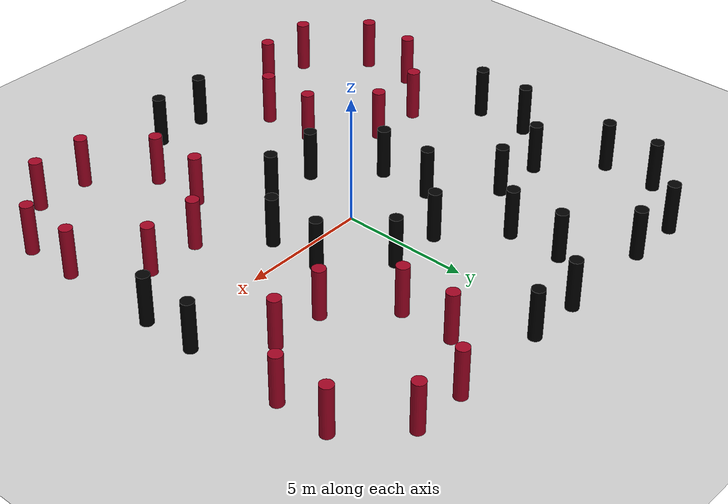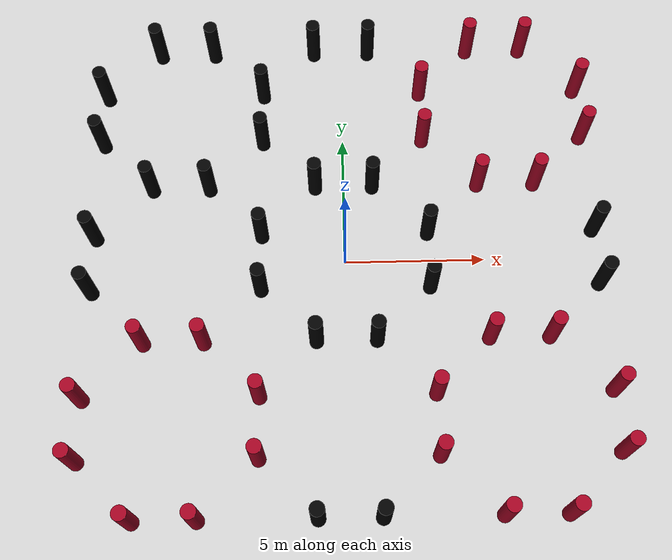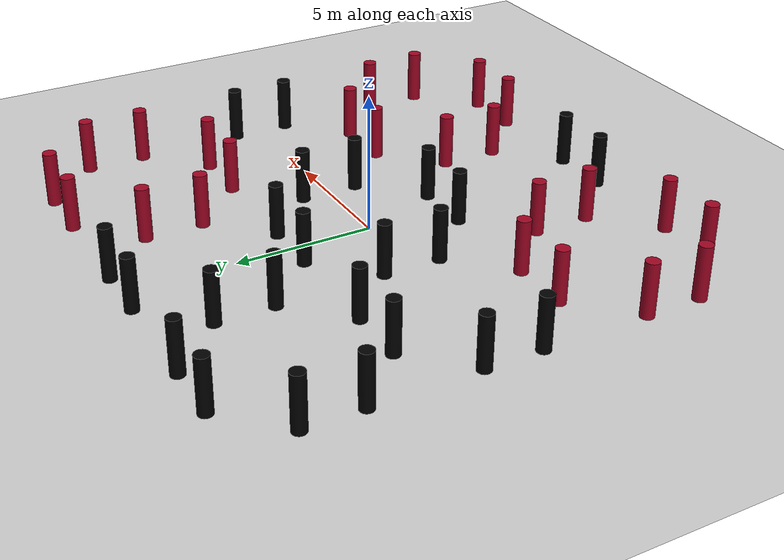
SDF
<sdf version="1.6">
 <world name="ros_logo">
  <include><uri>model://ground_plane</uri></include>
  <include><uri>model://sun</uri></include>
  <model name="wall_D_3_1">
   <static>true</static>
   <pose>3 1.05 1 0 0 0</pose>
   <link name="link">
    <collision name="wall">
     <geometry><cylinder><radius>0.25</radius><length>2.0</length></cylinder></geometry>
    </collision>
    <visual name="vis">
     <geometry><cylinder><radius>0.25</radius><length>2.0</length></cylinder></geometry>
     <material><ambient>0.0 0.0 0.0 1</ambient><diffuse>0.0 0.0 0.0 1</diffuse></material>
    </visual>
   </link>
  </model>
  <model name="wall_I_3_5">
   <static>true</static>
   <pose>3 4.95 1 0 0 0</pose>
   <link name="link">
    <collision name="wall">
     <laser_retro>255</laser_retro>
     <geometry><cylinder><radius>0.25</radius><length>2.0</length></cylinder></geometry>
    </collision>
    <visual name="vis">
     <geometry><cylinder><radius>0.25</radius><length>2.0</length></cylinder></geometry>
     <material><ambient>0.627 0.012 0.133 1</ambient><diffuse>0.627 0.012 0.133 1</diffuse></material>
    </visual>
   </link>
  </model>
  <model name="wall_A_5_3">
   <static>true</static>
   <pose>4.95 3 1 0 0 0</pose>
   <link name="link">
    <collision name="wall">
     <laser_retro>255</laser_retro>
     <geometry><cylinder><radius>0.25</radius><length>2.0</length></cylinder></geometry>
    </collision>
    <visual name="vis">
     <geometry><cylinder><radius>0.25</radius><length>2.0</length></cylinder></geometry>
     <material><ambient>0.627 0.012 0.133 1</ambient><diffuse>0.627 0.012 0.133 1</diffuse></material>
    </visual>
   </link>
  </model>
  <model name="wall_B_1_3">
   <static>true</static>
   <pose>1.05 3 1 0 0 0</pose>
   <link name="link">
    <collision name="wall">
     <geometry><cylinder><radius>0.25</radius><length>2.0</length></cylinder></geometry>
    </collision>
    <visual name="vis">
     <geometry><cylinder><radius>0.25</radius><length>2.0</length></cylinder></geometry>
     <material><ambient>0.0 0.0 0.0 1</ambient><diffuse>0.0 0.0 0.0 1</diffuse></material>
    </visual>
   </link>
  </model>
  <model name="wall_D_3_-5">
   <static>true</static>
   <pose>3 -4.95 1 0 0 0</pose>
   <link name="link">
    <collision name="wall">
     <laser_retro>255</laser_retro>
     <geometry><cylinder><radius>0.25</radius><length>2.0</length></cylinder></geometry>
    </collision>
    <visual name="vis">
     <geometry><cylinder><radius>0.25</radius><length>2.0</length></cylinder></geometry>
     <material><ambient>0.627 0.012 0.133 1</ambient><diffuse>0.627 0.012 0.133 1</diffuse></material>
    </visual>
   </link>
  </model>
  <model name="wall_I_3_-1">
   <static>true</static>
   <pose>3 -1.05 1 0 0 0</pose>
   <link name="link">
    <collision name="wall">
     <geometry><cylinder><radius>0.25</radius><length>2.0</length></cylinder></geometry>
    </collision>
    <visual name="vis">
     <geometry><cylinder><radius>0.25</radius><length>2.0</length></cylinder></geometry>
     <material><ambient>0.0 0.0 0.0 1</ambient><diffuse>0.0 0.0 0.0 1</diffuse></material>
    </visual>
   </link>
  </model>
  <model name="wall_A_5_-3">
   <static>true</static>
   <pose>4.95 -3 1 0 0 0</pose>
   <link name="link">
    <collision name="wall">
     <laser_retro>255</laser_retro>
     <geometry><cylinder><radius>0.25</radius><length>2.0</length></cylinder></geometry>
    </collision>
    <visual name="vis">
     <geometry><cylinder><radius>0.25</radius><length>2.0</length></cylinder></geometry>
     <material><ambient>0.627 0.012 0.133 1</ambient><diffuse>0.627 0.012 0.133 1</diffuse></material>
    </visual>
   </link>
  </model>
  <model name="wall_B_1_-3">
   <static>true</static>
   <pose>1.05 -3 1 0 0 0</pose>
   <link name="link">
    <collision name="wall">
     <geometry><cylinder><radius>0.25</radius><length>2.0</length></cylinder></geometry>
    </collision>
    <visual name="vis">
     <geometry><cylinder><radius>0.25</radius><length>2.0</length></cylinder></geometry>
     <material><ambient>0.0 0.0 0.0 1</ambient><diffuse>0.0 0.0 0.0 1</diffuse></material>
    </visual>
   </link>
  </model>
  <model name="wall_D_-3_-5">
   <static>true</static>
   <pose>-3 -4.95 1 0 0 0</pose>
   <link name="link">
    <collision name="wall">
     <laser_retro>255</laser_retro>
     <geometry><cylinder><radius>0.25</radius><length>2.0</length></cylinder></geometry>
    </collision>
    <visual name="vis">
     <geometry><cylinder><radius>0.25</radius><length>2.0</length></cylinder></geometry>
     <material><ambient>0.627 0.012 0.133 1</ambient><diffuse>0.627 0.012 0.133 1</diffuse></material>
    </visual>
   </link>
  </model>
  <model name="wall_I_-3_-1">
   <static>true</static>
   <pose>-3 -1.05 1 0 0 0</pose>
   <link name="link">
    <collision name="wall">
     <geometry><cylinder><radius>0.25</radius><length>2.0</length></cylinder></geometry>
    </collision>
    <visual name="vis">
     <geometry><cylinder><radius>0.25</radius><length>2.0</length></cylinder></geometry>
     <material><ambient>0.0 0.0 0.0 1</ambient><diffuse>0.0 0.0 0.0 1</diffuse></material>
    </visual>
   </link>
  </model>
  <model name="wall_A_-5_-3">
   <static>true</static>
   <pose>-4.95 -3 1 0 0 0</pose>
   <link name="link">
    <collision name="wall">
     <laser_retro>255</laser_retro>
     <geometry><cylinder><radius>0.25</radius><length>2.0</length></cylinder></geometry>
    </collision>
    <visual name="vis">
     <geometry><cylinder><radius>0.25</radius><length>2.0</length></cylinder></geometry>
     <material><ambient>0.627 0.012 0.133 1</ambient><diffuse>0.627 0.012 0.133 1</diffuse></material>
    </visual>
   </link>
  </model>
  <model name="wall_B_-1_-3">
   <static>true</static>
   <pose>-1.05 -3 1 0 0 0</pose>
   <link name="link">
    <collision name="wall">
     <geometry><cylinder><radius>0.25</radius><length>2.0</length></cylinder></geometry>
    </collision>
    <visual name="vis">
     <geometry><cylinder><radius>0.25</radius><length>2.0</length></cylinder></geometry>
     <material><ambient>0.0 0.0 0.0 1</ambient><diffuse>0.0 0.0 0.0 1</diffuse></material>
    </visual>
   </link>
  </model>
  <model name="wall_D_-3_5">
   <static>true</static>
   <pose>-3 4.95 1 0 0 0</pose>
   <link name="link">
    <collision name="wall">
     <geometry><cylinder><radius>0.25</radius><length>2.0</length></cylinder></geometry>
    </collision>
    <visual name="vis">
     <geometry><cylinder><radius>0.25</radius><length>2.0</length></cylinder></geometry>
     <material><ambient>0.0 0.0 0.0 1</ambient><diffuse>0.0 0.0 0.0 1</diffuse></material>
    </visual>
   </link>
  </model>
  <model name="wall_I_-3_1">
   <static>true</static>
   <pose>-3 1.05 1 0 0 0</pose>
   <link name="link">
    <collision name="wall">
     <geometry><cylinder><radius>0.25</radius><length>2.0</length></cylinder></geometry>
    </collision>
    <visual name="vis">
     <geometry><cylinder><radius>0.25</radius><length>2.0</length></cylinder></geometry>
     <material><ambient>0.0 0.0 0.0 1</ambient><diffuse>0.0 0.0 0.0 1</diffuse></material>
    </visual>
   </link>
  </model>
  <model name="wall_A_-5_3">
   <static>true</static>
   <pose>-4.95 3 1 0 0 0</pose>
   <link name="link">
    <collision name="wall">
     <geometry><cylinder><radius>0.25</radius><length>2.0</length></cylinder></geometry>
    </collision>
    <visual name="vis">
     <geometry><cylinder><radius>0.25</radius><length>2.0</length></cylinder></geometry>
     <material><ambient>0.0 0.0 0.0 1</ambient><diffuse>0.0 0.0 0.0 1</diffuse></material>
    </visual>
   </link>
  </model>
  <model name="wall_B_-1_3">
   <static>true</static>
   <pose>-1.05 3 1 0 0 0</pose>
   <link name="link">
    <collision name="wall">
     <geometry><cylinder><radius>0.25</radius><length>2.0</length></cylinder></geometry>
    </collision>
    <visual name="vis">
     <geometry><cylinder><radius>0.25</radius><length>2.0</length></cylinder></geometry>
     <material><ambient>0.0 0.0 0.0 1</ambient><diffuse>0.0 0.0 0.0 1</diffuse></material>
    </visual>
   </link>
  </model>
  <model name="wall_D_-3_7">
   <static>true</static>
   <pose>-3 7.05 1 0 0 0</pose>
   <link name="link">
    <collision name="wall">
     <geometry><cylinder><radius>0.25</radius><length>2.0</length></cylinder></geometry>
    </collision>
    <visual name="vis">
     <geometry><cylinder><radius>0.25</radius><length>2.0</length></cylinder></geometry>
     <material><ambient>0.0 0.0 0.0 1</ambient><diffuse>0.0 0.0 0.0 1</diffuse></material>
    </visual>
   </link>
  </model>
  <model name="wall_A_-5_9">
   <static>true</static>
   <pose>-4.95 9 1 0 0 0</pose>
   <link name="link">
    <collision name="wall">
     <geometry><cylinder><radius>0.25</radius><length>2.0</length></cylinder></geometry>
    </collision>
    <visual name="vis">
     <geometry><cylinder><radius>0.25</radius><length>2.0</length></cylinder></geometry>
     <material><ambient>0.0 0.0 0.0 1</ambient><diffuse>0.0 0.0 0.0 1</diffuse></material>
    </visual>
   </link>
  </model>
  <model name="wall_B_-1_9">
   <static>true</static>
   <pose>-1.05 9 1 0 0 0</pose>
   <link name="link">
    <collision name="wall">
     <geometry><cylinder><radius>0.25</radius><length>2.0</length></cylinder></geometry>
    </collision>
    <visual name="vis">
     <geometry><cylinder><radius>0.25</radius><length>2.0</length></cylinder></geometry>
     <material><ambient>0.0 0.0 0.0 1</ambient><diffuse>0.0 0.0 0.0 1</diffuse></material>
    </visual>
   </link>
  </model>
  <model name="wall_D_3_7">
   <static>true</static>
   <pose>3 7.05 1 0 0 0</pose>
   <link name="link">
    <collision name="wall">
     <laser_retro>255</laser_retro>
     <geometry><cylinder><radius>0.25</radius><length>2.0</length></cylinder></geometry>
    </collision>
    <visual name="vis">
     <geometry><cylinder><radius>0.25</radius><length>2.0</length></cylinder></geometry>
     <material><ambient>0.627 0.012 0.133 1</ambient><diffuse>0.627 0.012 0.133 1</diffuse></material>
    </visual>
   </link>
  </model>
  <model name="wall_A_5_9">
   <static>true</static>
   <pose>4.95 9 1 0 0 0</pose>
   <link name="link">
    <collision name="wall">
     <laser_retro>255</laser_retro>
     <geometry><cylinder><radius>0.25</radius><length>2.0</length></cylinder></geometry>
    </collision>
    <visual name="vis">
     <geometry><cylinder><radius>0.25</radius><length>2.0</length></cylinder></geometry>
     <material><ambient>0.627 0.012 0.133 1</ambient><diffuse>0.627 0.012 0.133 1</diffuse></material>
    </visual>
   </link>
  </model>
  <model name="wall_B_1_9">
   <static>true</static>
   <pose>1.05 9 1 0 0 0</pose>
   <link name="link">
    <collision name="wall">
     <geometry><cylinder><radius>0.25</radius><length>2.0</length></cylinder></geometry>
    </collision>
    <visual name="vis">
     <geometry><cylinder><radius>0.25</radius><length>2.0</length></cylinder></geometry>
     <material><ambient>0.0 0.0 0.0 1</ambient><diffuse>0.0 0.0 0.0 1</diffuse></material>
    </visual>
   </link>
  </model>
  <model name="wall_D_9_7">
   <static>true</static>
   <pose>9 7.05 1 0 0 0</pose>
   <link name="link">
    <collision name="wall">
     <laser_retro>255</laser_retro>
     <geometry><cylinder><radius>0.25</radius><length>2.0</length></cylinder></geometry>
    </collision>
    <visual name="vis">
     <geometry><cylinder><radius>0.25</radius><length>2.0</length></cylinder></geometry>
     <material><ambient>0.627 0.012 0.133 1</ambient><diffuse>0.627 0.012 0.133 1</diffuse></material>
    </visual>
   </link>
  </model>
  <model name="wall_B_7_9">
   <static>true</static>
   <pose>7.05 9 1 0 0 0</pose>
   <link name="link">
    <collision name="wall">
     <laser_retro>255</laser_retro>
     <geometry><cylinder><radius>0.25</radius><length>2.0</length></cylinder></geometry>
    </collision>
    <visual name="vis">
     <geometry><cylinder><radius>0.25</radius><length>2.0</length></cylinder></geometry>
     <material><ambient>0.627 0.012 0.133 1</ambient><diffuse>0.627 0.012 0.133 1</diffuse></material>
    </visual>
   </link>
  </model>
  <model name="wall_D_9_1">
   <static>true</static>
   <pose>9 1.05 1 0 0 0</pose>
   <link name="link">
    <collision name="wall">
     <geometry><cylinder><radius>0.25</radius><length>2.0</length></cylinder></geometry>
    </collision>
    <visual name="vis">
     <geometry><cylinder><radius>0.25</radius><length>2.0</length></cylinder></geometry>
     <material><ambient>0.0 0.0 0.0 1</ambient><diffuse>0.0 0.0 0.0 1</diffuse></material>
    </visual>
   </link>
  </model>
  <model name="wall_I_9_5">
   <static>true</static>
   <pose>9 4.95 1 0 0 0</pose>
   <link name="link">
    <collision name="wall">
     <laser_retro>255</laser_retro>
     <geometry><cylinder><radius>0.25</radius><length>2.0</length></cylinder></geometry>
    </collision>
    <visual name="vis">
     <geometry><cylinder><radius>0.25</radius><length>2.0</length></cylinder></geometry>
     <material><ambient>0.627 0.012 0.133 1</ambient><diffuse>0.627 0.012 0.133 1</diffuse></material>
    </visual>
   </link>
  </model>
  <model name="wall_B_7_3">
   <static>true</static>
   <pose>7.05 3 1 0 0 0</pose>
   <link name="link">
    <collision name="wall">
     <laser_retro>255</laser_retro>
     <geometry><cylinder><radius>0.25</radius><length>2.0</length></cylinder></geometry>
    </collision>
    <visual name="vis">
     <geometry><cylinder><radius>0.25</radius><length>2.0</length></cylinder></geometry>
     <material><ambient>0.627 0.012 0.133 1</ambient><diffuse>0.627 0.012 0.133 1</diffuse></material>
    </visual>
   </link>
  </model>
  <model name="wall_D_9_-5">
   <static>true</static>
   <pose>9 -4.95 1 0 0 0</pose>
   <link name="link">
    <collision name="wall">
     <laser_retro>255</laser_retro>
     <geometry><cylinder><radius>0.25</radius><length>2.0</length></cylinder></geometry>
    </collision>
    <visual name="vis">
     <geometry><cylinder><radius>0.25</radius><length>2.0</length></cylinder></geometry>
     <material><ambient>0.627 0.012 0.133 1</ambient><diffuse>0.627 0.012 0.133 1</diffuse></material>
    </visual>
   </link>
  </model>
  <model name="wall_I_9_-1">
   <static>true</static>
   <pose>9 -1.05 1 0 0 0</pose>
   <link name="link">
    <collision name="wall">
     <geometry><cylinder><radius>0.25</radius><length>2.0</length></cylinder></geometry>
    </collision>
    <visual name="vis">
     <geometry><cylinder><radius>0.25</radius><length>2.0</length></cylinder></geometry>
     <material><ambient>0.0 0.0 0.0 1</ambient><diffuse>0.0 0.0 0.0 1</diffuse></material>
    </visual>
   </link>
  </model>
  <model name="wall_B_7_-3">
   <static>true</static>
   <pose>7.05 -3 1 0 0 0</pose>
   <link name="link">
    <collision name="wall">
     <laser_retro>255</laser_retro>
     <geometry><cylinder><radius>0.25</radius><length>2.0</length></cylinder></geometry>
    </collision>
    <visual name="vis">
     <geometry><cylinder><radius>0.25</radius><length>2.0</length></cylinder></geometry>
     <material><ambient>0.627 0.012 0.133 1</ambient><diffuse>0.627 0.012 0.133 1</diffuse></material>
    </visual>
   </link>
  </model>
  <model name="wall_I_9_-7">
   <static>true</static>
   <pose>9 -7.05 1 0 0 0</pose>
   <link name="link">
    <collision name="wall">
     <laser_retro>255</laser_retro>
     <geometry><cylinder><radius>0.25</radius><length>2.0</length></cylinder></geometry>
    </collision>
    <visual name="vis">
     <geometry><cylinder><radius>0.25</radius><length>2.0</length></cylinder></geometry>
     <material><ambient>0.627 0.012 0.133 1</ambient><diffuse>0.627 0.012 0.133 1</diffuse></material>
    </visual>
   </link>
  </model>
  <model name="wall_B_7_-9">
   <static>true</static>
   <pose>7.05 -9 1 0 0 0</pose>
   <link name="link">
    <collision name="wall">
     <laser_retro>255</laser_retro>
     <geometry><cylinder><radius>0.25</radius><length>2.0</length></cylinder></geometry>
    </collision>
    <visual name="vis">
     <geometry><cylinder><radius>0.25</radius><length>2.0</length></cylinder></geometry>
     <material><ambient>0.627 0.012 0.133 1</ambient><diffuse>0.627 0.012 0.133 1</diffuse></material>
    </visual>
   </link>
  </model>
  <model name="wall_I_3_-7">
   <static>true</static>
   <pose>3 -7.05 1 0 0 0</pose>
   <link name="link">
    <collision name="wall">
     <laser_retro>255</laser_retro>
     <geometry><cylinder><radius>0.25</radius><length>2.0</length></cylinder></geometry>
    </collision>
    <visual name="vis">
     <geometry><cylinder><radius>0.25</radius><length>2.0</length></cylinder></geometry>
     <material><ambient>0.627 0.012 0.133 1</ambient><diffuse>0.627 0.012 0.133 1</diffuse></material>
    </visual>
   </link>
  </model>
  <model name="wall_A_5_-9">
   <static>true</static>
   <pose>4.95 -9 1 0 0 0</pose>
   <link name="link">
    <collision name="wall">
     <laser_retro>255</laser_retro>
     <geometry><cylinder><radius>0.25</radius><length>2.0</length></cylinder></geometry>
    </collision>
    <visual name="vis">
     <geometry><cylinder><radius>0.25</radius><length>2.0</length></cylinder></geometry>
     <material><ambient>0.627 0.012 0.133 1</ambient><diffuse>0.627 0.012 0.133 1</diffuse></material>
    </visual>
   </link>
  </model>
  <model name="wall_B_1_-9">
   <static>true</static>
   <pose>1.05 -9 1 0 0 0</pose>
   <link name="link">
    <collision name="wall">
     <geometry><cylinder><radius>0.25</radius><length>2.0</length></cylinder></geometry>
    </collision>
    <visual name="vis">
     <geometry><cylinder><radius>0.25</radius><length>2.0</length></cylinder></geometry>
     <material><ambient>0.0 0.0 0.0 1</ambient><diffuse>0.0 0.0 0.0 1</diffuse></material>
    </visual>
   </link>
  </model>
  <model name="wall_I_-3_-7">
   <static>true</static>
   <pose>-3 -7.05 1 0 0 0</pose>
   <link name="link">
    <collision name="wall">
     <laser_retro>255</laser_retro>
     <geometry><cylinder><radius>0.25</radius><length>2.0</length></cylinder></geometry>
    </collision>
    <visual name="vis">
     <geometry><cylinder><radius>0.25</radius><length>2.0</length></cylinder></geometry>
     <material><ambient>0.627 0.012 0.133 1</ambient><diffuse>0.627 0.012 0.133 1</diffuse></material>
    </visual>
   </link>
  </model>
  <model name="wall_A_-5_-9">
   <static>true</static>
   <pose>-4.95 -9 1 0 0 0</pose>
   <link name="link">
    <collision name="wall">
     <laser_retro>255</laser_retro>
     <geometry><cylinder><radius>0.25</radius><length>2.0</length></cylinder></geometry>
    </collision>
    <visual name="vis">
     <geometry><cylinder><radius>0.25</radius><length>2.0</length></cylinder></geometry>
     <material><ambient>0.627 0.012 0.133 1</ambient><diffuse>0.627 0.012 0.133 1</diffuse></material>
    </visual>
   </link>
  </model>
  <model name="wall_B_-1_-9">
   <static>true</static>
   <pose>-1.05 -9 1 0 0 0</pose>
   <link name="link">
    <collision name="wall">
     <geometry><cylinder><radius>0.25</radius><length>2.0</length></cylinder></geometry>
    </collision>
    <visual name="vis">
     <geometry><cylinder><radius>0.25</radius><length>2.0</length></cylinder></geometry>
     <material><ambient>0.0 0.0 0.0 1</ambient><diffuse>0.0 0.0 0.0 1</diffuse></material>
    </visual>
   </link>
  </model>
  <model name="wall_I_-9_-7">
   <static>true</static>
   <pose>-9 -7.05 1 0 0 0</pose>
   <link name="link">
    <collision name="wall">
     <laser_retro>255</laser_retro>
     <geometry><cylinder><radius>0.25</radius><length>2.0</length></cylinder></geometry>
    </collision>
    <visual name="vis">
     <geometry><cylinder><radius>0.25</radius><length>2.0</length></cylinder></geometry>
     <material><ambient>0.627 0.012 0.133 1</ambient><diffuse>0.627 0.012 0.133 1</diffuse></material>
    </visual>
   </link>
  </model>
  <model name="wall_A_-7_-9">
   <static>true</static>
   <pose>-7.05 -9 1 0 0 0</pose>
   <link name="link">
    <collision name="wall">
     <laser_retro>255</laser_retro>
     <geometry><cylinder><radius>0.25</radius><length>2.0</length></cylinder></geometry>
    </collision>
    <visual name="vis">
     <geometry><cylinder><radius>0.25</radius><length>2.0</length></cylinder></geometry>
     <material><ambient>0.627 0.012 0.133 1</ambient><diffuse>0.627 0.012 0.133 1</diffuse></material>
    </visual>
   </link>
  </model>
  <model name="wall_D_-9_-5">
   <static>true</static>
   <pose>-9 -4.95 1 0 0 0</pose>
   <link name="link">
    <collision name="wall">
     <laser_retro>255</laser_retro>
     <geometry><cylinder><radius>0.25</radius><length>2.0</length></cylinder></geometry>
    </collision>
    <visual name="vis">
     <geometry><cylinder><radius>0.25</radius><length>2.0</length></cylinder></geometry>
     <material><ambient>0.627 0.012 0.133 1</ambient><diffuse>0.627 0.012 0.133 1</diffuse></material>
    </visual>
   </link>
  </model>
  <model name="wall_I_-9_-1">
   <static>true</static>
   <pose>-9 -1.05 1 0 0 0</pose>
   <link name="link">
    <collision name="wall">
     <geometry><cylinder><radius>0.25</radius><length>2.0</length></cylinder></geometry>
    </collision>
    <visual name="vis">
     <geometry><cylinder><radius>0.25</radius><length>2.0</length></cylinder></geometry>
     <material><ambient>0.0 0.0 0.0 1</ambient><diffuse>0.0 0.0 0.0 1</diffuse></material>
    </visual>
   </link>
  </model>
  <model name="wall_A_-7_-3">
   <static>true</static>
   <pose>-7.05 -3 1 0 0 0</pose>
   <link name="link">
    <collision name="wall">
     <laser_retro>255</laser_retro>
     <geometry><cylinder><radius>0.25</radius><length>2.0</length></cylinder></geometry>
    </collision>
    <visual name="vis">
     <geometry><cylinder><radius>0.25</radius><length>2.0</length></cylinder></geometry>
     <material><ambient>0.627 0.012 0.133 1</ambient><diffuse>0.627 0.012 0.133 1</diffuse></material>
    </visual>
   </link>
  </model>
  <model name="wall_D_-9_5">
   <static>true</static>
   <pose>-9 4.95 1 0 0 0</pose>
   <link name="link">
    <collision name="wall">
     <geometry><cylinder><radius>0.25</radius><length>2.0</length></cylinder></geometry>
    </collision>
    <visual name="vis">
     <geometry><cylinder><radius>0.25</radius><length>2.0</length></cylinder></geometry>
     <material><ambient>0.0 0.0 0.0 1</ambient><diffuse>0.0 0.0 0.0 1</diffuse></material>
    </visual>
   </link>
  </model>
  <model name="wall_I_-9_1">
   <static>true</static>
   <pose>-9 1.05 1 0 0 0</pose>
   <link name="link">
    <collision name="wall">
     <geometry><cylinder><radius>0.25</radius><length>2.0</length></cylinder></geometry>
    </collision>
    <visual name="vis">
     <geometry><cylinder><radius>0.25</radius><length>2.0</length></cylinder></geometry>
     <material><ambient>0.0 0.0 0.0 1</ambient><diffuse>0.0 0.0 0.0 1</diffuse></material>
    </visual>
   </link>
  </model>
  <model name="wall_A_-7_3">
   <static>true</static>
   <pose>-7.05 3 1 0 0 0</pose>
   <link name="link">
    <collision name="wall">
     <geometry><cylinder><radius>0.25</radius><length>2.0</length></cylinder></geometry>
    </collision>
    <visual name="vis">
     <geometry><cylinder><radius>0.25</radius><length>2.0</length></cylinder></geometry>
     <material><ambient>0.0 0.0 0.0 1</ambient><diffuse>0.0 0.0 0.0 1</diffuse></material>
    </visual>
   </link>
  </model>
  <model name="wall_D_-9_7">
   <static>true</static>
   <pose>-9 7.05 1 0 0 0</pose>
   <link name="link">
    <collision name="wall">
     <geometry><cylinder><radius>0.25</radius><length>2.0</length></cylinder></geometry>
    </collision>
    <visual name="vis">
     <geometry><cylinder><radius>0.25</radius><length>2.0</length></cylinder></geometry>
     <material><ambient>0.0 0.0 0.0 1</ambient><diffuse>0.0 0.0 0.0 1</diffuse></material>
    </visual>
   </link>
  </model>
  <model name="wall_A_-7_9">
   <static>true</static>
   <pose>-7.05 9 1 0 0 0</pose>
   <link name="link">
    <collision name="wall">
     <geometry><cylinder><radius>0.25</radius><length>2.0</length></cylinder></geometry>
    </collision>
    <visual name="vis">
     <geometry><cylinder><radius>0.25</radius><length>2.0</length></cylinder></geometry>
     <material><ambient>0.0 0.0 0.0 1</ambient><diffuse>0.0 0.0 0.0 1</diffuse></material>
    </visual>
   </link>
  </model>
 </world>
</sdf>
